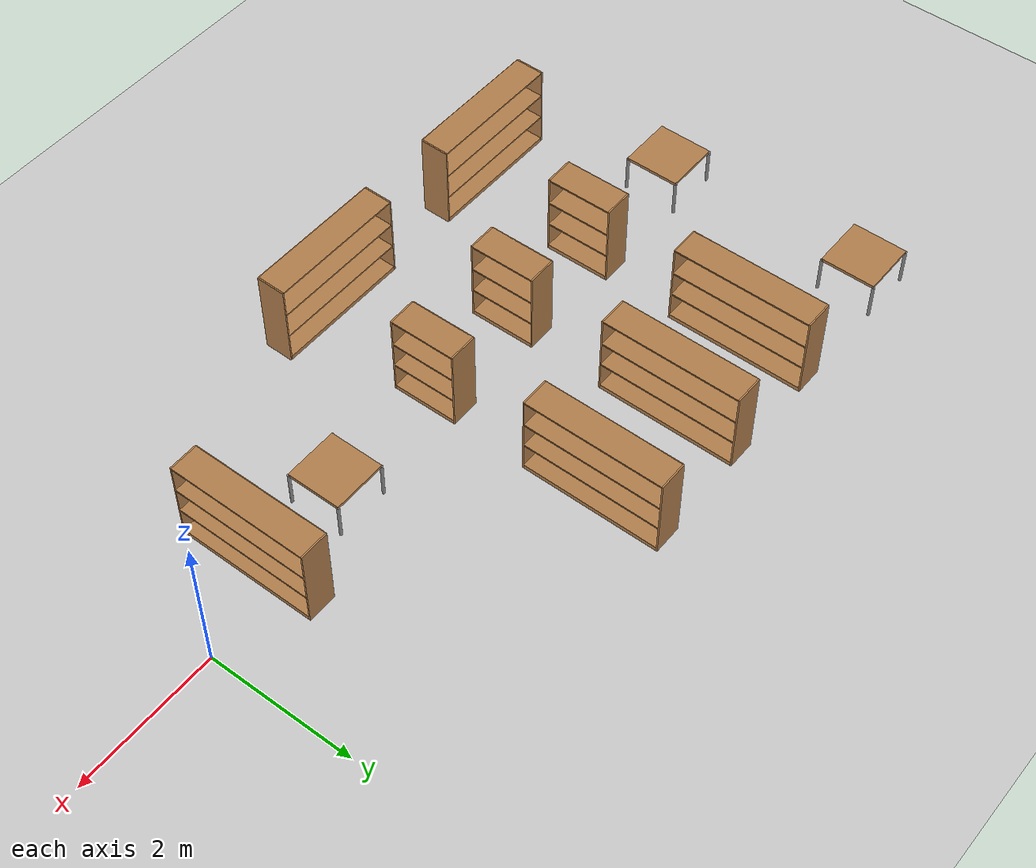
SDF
<sdf version="1.6">
 <world name="default">
  <model name="ground_plane">
   <static>1</static>
   <link name="link">
    <collision name="collision">
     <geometry><plane><normal>0 0 1</normal><size>100 100</size></plane></geometry>
     <surface><friction><ode><mu>100</mu><mu2>50</mu2></ode></friction></surface>
    </collision>
    <visual name="visual">
     <cast_shadows>0</cast_shadows>
     <geometry><plane><normal>0 0 1</normal><size>100 100</size></plane></geometry>
     <material>
      <script><uri>file://media/materials/scripts/gazebo.material</uri><name>Gazebo/Grey</name></script>
     </material>
    </visual>
   </link>
  </model>
  <model name="bookshelf_1">
   <static>1</static>
   <link name="link">
    <inertial><mass>1</mass></inertial>
    <collision name="back">
     <pose>0 0.005 0.6 0 -0 0</pose>
     <geometry><box><size>0.9 0.01 1.2</size></box></geometry>
    </collision>
    <visual name="visual1">
     <pose>0 0.005 0.6 0 -0 0</pose>
     <geometry><box><size>0.9 0.01 1.2</size></box></geometry>
     <material>
      <script><uri>file://media/materials/scripts/gazebo.material</uri><name>Gazebo/Wood</name></script>
     </material>
    </visual>
    <collision name="left_side">
     <pose>0.45 -0.195 0.6 0 -0 0</pose>
     <geometry><box><size>0.02 0.4 1.2</size></box></geometry>
    </collision>
    <visual name="visual2">
     <pose>0.45 -0.195 0.6 0 -0 0</pose>
     <geometry><box><size>0.02 0.4 1.2</size></box></geometry>
     <material>
      <script><uri>file://media/materials/scripts/gazebo.material</uri><name>Gazebo/Wood</name></script>
     </material>
    </visual>
    <collision name="right_side">
     <pose>-0.45 -0.195 0.6 0 -0 0</pose>
     <geometry><box><size>0.02 0.4 1.2</size></box></geometry>
    </collision>
    <visual name="visual3">
     <pose>-0.45 -0.195 0.6 0 -0 0</pose>
     <geometry><box><size>0.02 0.4 1.2</size></box></geometry>
     <material>
      <script><uri>file://media/materials/scripts/gazebo.material</uri><name>Gazebo/Wood</name></script>
     </material>
    </visual>
    <collision name="bottom">
     <pose>0 -0.195 0.03 0 -0 0</pose>
     <geometry><box><size>0.88 0.4 0.06</size></box></geometry>
    </collision>
    <visual name="visual4">
     <pose>0 -0.195 0.03 0 -0 0</pose>
     <geometry><box><size>0.88 0.4 0.06</size></box></geometry>
     <material>
      <script><uri>file://media/materials/scripts/gazebo.material</uri><name>Gazebo/Wood</name></script>
     </material>
    </visual>
    <collision name="top">
     <pose>0 -0.195 1.19 0 -0 0</pose>
     <geometry><box><size>0.88 0.4 0.02</size></box></geometry>
    </collision>
    <visual name="visual5">
     <pose>0 -0.195 1.19 0 -0 0</pose>
     <geometry><box><size>0.88 0.4 0.02</size></box></geometry>
     <material>
      <script><uri>file://media/materials/scripts/gazebo.material</uri><name>Gazebo/Wood</name></script>
     </material>
    </visual>
    <collision name="low_shelf">
     <pose>0 -0.195 0.43 0 -0 0</pose>
     <geometry><box><size>0.88 0.4 0.02</size></box></geometry>
    </collision>
    <visual name="visual6">
     <pose>0 -0.195 0.43 0 -0 0</pose>
     <geometry><box><size>0.88 0.4 0.02</size></box></geometry>
     <material>
      <script><uri>file://media/materials/scripts/gazebo.material</uri><name>Gazebo/Wood</name></script>
     </material>
    </visual>
    <collision name="high_shelf">
     <pose>0 -0.195 0.8 0 -0 0</pose>
     <geometry><box><size>0.88 0.4 0.02</size></box></geometry>
    </collision>
    <visual name="visual7">
     <pose>0 -0.195 0.8 0 -0 0</pose>
     <geometry><box><size>0.88 0.4 0.02</size></box></geometry>
     <material>
      <script><uri>file://media/materials/scripts/gazebo.material</uri><name>Gazebo/Wood</name></script>
     </material>
    </visual>
   </link>
   <pose>-7.42871 -0.404892 0 0 -0 1.57898</pose>
  </model>
  <model name="bookshelf_2">
   <static>1</static>
   <link name="link">
    <inertial><mass>1</mass></inertial>
    <collision name="back">
     <pose>0 0.005 0.6 0 -0 0</pose>
     <geometry><box><size>0.9 0.01 1.2</size></box></geometry>
    </collision>
    <visual name="visual1">
     <pose>0 0.005 0.6 0 -0 0</pose>
     <geometry><box><size>0.9 0.01 1.2</size></box></geometry>
     <material>
      <script><uri>file://media/materials/scripts/gazebo.material</uri><name>Gazebo/Wood</name></script>
     </material>
    </visual>
    <collision name="left_side">
     <pose>0.45 -0.195 0.6 0 -0 0</pose>
     <geometry><box><size>0.02 0.4 1.2</size></box></geometry>
    </collision>
    <visual name="visual2">
     <pose>0.45 -0.195 0.6 0 -0 0</pose>
     <geometry><box><size>0.02 0.4 1.2</size></box></geometry>
     <material>
      <script><uri>file://media/materials/scripts/gazebo.material</uri><name>Gazebo/Wood</name></script>
     </material>
    </visual>
    <collision name="right_side">
     <pose>-0.45 -0.195 0.6 0 -0 0</pose>
     <geometry><box><size>0.02 0.4 1.2</size></box></geometry>
    </collision>
    <visual name="visual3">
     <pose>-0.45 -0.195 0.6 0 -0 0</pose>
     <geometry><box><size>0.02 0.4 1.2</size></box></geometry>
     <material>
      <script><uri>file://media/materials/scripts/gazebo.material</uri><name>Gazebo/Wood</name></script>
     </material>
    </visual>
    <collision name="bottom">
     <pose>0 -0.195 0.03 0 -0 0</pose>
     <geometry><box><size>0.88 0.4 0.06</size></box></geometry>
    </collision>
    <visual name="visual4">
     <pose>0 -0.195 0.03 0 -0 0</pose>
     <geometry><box><size>0.88 0.4 0.06</size></box></geometry>
     <material>
      <script><uri>file://media/materials/scripts/gazebo.material</uri><name>Gazebo/Wood</name></script>
     </material>
    </visual>
    <collision name="top">
     <pose>0 -0.195 1.19 0 -0 0</pose>
     <geometry><box><size>0.88 0.4 0.02</size></box></geometry>
    </collision>
    <visual name="visual5">
     <pose>0 -0.195 1.19 0 -0 0</pose>
     <geometry><box><size>0.88 0.4 0.02</size></box></geometry>
     <material>
      <script><uri>file://media/materials/scripts/gazebo.material</uri><name>Gazebo/Wood</name></script>
     </material>
    </visual>
    <collision name="low_shelf">
     <pose>0 -0.195 0.43 0 -0 0</pose>
     <geometry><box><size>0.88 0.4 0.02</size></box></geometry>
    </collision>
    <visual name="visual6">
     <pose>0 -0.195 0.43 0 -0 0</pose>
     <geometry><box><size>0.88 0.4 0.02</size></box></geometry>
     <material>
      <script><uri>file://media/materials/scripts/gazebo.material</uri><name>Gazebo/Wood</name></script>
     </material>
    </visual>
    <collision name="high_shelf">
     <pose>0 -0.195 0.8 0 -0 0</pose>
     <geometry><box><size>0.88 0.4 0.02</size></box></geometry>
    </collision>
    <visual name="visual7">
     <pose>0 -0.195 0.8 0 -0 0</pose>
     <geometry><box><size>0.88 0.4 0.02</size></box></geometry>
     <material>
      <script><uri>file://media/materials/scripts/gazebo.material</uri><name>Gazebo/Wood</name></script>
     </material>
    </visual>
   </link>
   <pose>-5.98331 -0.451994 0 0 -0 1.57898</pose>
  </model>
  <model name="bookshelf_3">
   <static>1</static>
   <link name="link">
    <inertial><mass>1</mass></inertial>
    <collision name="back">
     <pose>0 0.005 0.6 0 -0 0</pose>
     <geometry><box><size>0.9 0.01 1.2</size></box></geometry>
    </collision>
    <visual name="visual1">
     <pose>0 0.005 0.6 0 -0 0</pose>
     <geometry><box><size>0.9 0.01 1.2</size></box></geometry>
     <material>
      <script><uri>file://media/materials/scripts/gazebo.material</uri><name>Gazebo/Wood</name></script>
     </material>
    </visual>
    <collision name="left_side">
     <pose>0.45 -0.195 0.6 0 -0 0</pose>
     <geometry><box><size>0.02 0.4 1.2</size></box></geometry>
    </collision>
    <visual name="visual2">
     <pose>0.45 -0.195 0.6 0 -0 0</pose>
     <geometry><box><size>0.02 0.4 1.2</size></box></geometry>
     <material>
      <script><uri>file://media/materials/scripts/gazebo.material</uri><name>Gazebo/Wood</name></script>
     </material>
    </visual>
    <collision name="right_side">
     <pose>-0.45 -0.195 0.6 0 -0 0</pose>
     <geometry><box><size>0.02 0.4 1.2</size></box></geometry>
    </collision>
    <visual name="visual3">
     <pose>-0.45 -0.195 0.6 0 -0 0</pose>
     <geometry><box><size>0.02 0.4 1.2</size></box></geometry>
     <material>
      <script><uri>file://media/materials/scripts/gazebo.material</uri><name>Gazebo/Wood</name></script>
     </material>
    </visual>
    <collision name="bottom">
     <pose>0 -0.195 0.03 0 -0 0</pose>
     <geometry><box><size>0.88 0.4 0.06</size></box></geometry>
    </collision>
    <visual name="visual4">
     <pose>0 -0.195 0.03 0 -0 0</pose>
     <geometry><box><size>0.88 0.4 0.06</size></box></geometry>
     <material>
      <script><uri>file://media/materials/scripts/gazebo.material</uri><name>Gazebo/Wood</name></script>
     </material>
    </visual>
    <collision name="top">
     <pose>0 -0.195 1.19 0 -0 0</pose>
     <geometry><box><size>0.88 0.4 0.02</size></box></geometry>
    </collision>
    <visual name="visual5">
     <pose>0 -0.195 1.19 0 -0 0</pose>
     <geometry><box><size>0.88 0.4 0.02</size></box></geometry>
     <material>
      <script><uri>file://media/materials/scripts/gazebo.material</uri><name>Gazebo/Wood</name></script>
     </material>
    </visual>
    <collision name="low_shelf">
     <pose>0 -0.195 0.43 0 -0 0</pose>
     <geometry><box><size>0.88 0.4 0.02</size></box></geometry>
    </collision>
    <visual name="visual6">
     <pose>0 -0.195 0.43 0 -0 0</pose>
     <geometry><box><size>0.88 0.4 0.02</size></box></geometry>
     <material>
      <script><uri>file://media/materials/scripts/gazebo.material</uri><name>Gazebo/Wood</name></script>
     </material>
    </visual>
    <collision name="high_shelf">
     <pose>0 -0.195 0.8 0 -0 0</pose>
     <geometry><box><size>0.88 0.4 0.02</size></box></geometry>
    </collision>
    <visual name="visual7">
     <pose>0 -0.195 0.8 0 -0 0</pose>
     <geometry><box><size>0.88 0.4 0.02</size></box></geometry>
     <material>
      <script><uri>file://media/materials/scripts/gazebo.material</uri><name>Gazebo/Wood</name></script>
     </material>
    </visual>
   </link>
   <pose>-4.4879 -0.432889 0 0 -0 1.57898</pose>
  </model>
  <model name="bookshelf_4">
   <static>1</static>
   <link name="link">
    <inertial><mass>1</mass></inertial>
    <collision name="back">
     <pose>0 0.005 0.6 0 -0 0</pose>
     <geometry><box><size>1.9 0.01 1.2</size></box></geometry>
    </collision>
    <visual name="back">
     <pose>0 0.005 0.6 0 -0 0</pose>
     <geometry><box><size>1.9 0.01 1.2</size></box></geometry>
     <material>
      <script><uri>file://media/materials/scripts/gazebo.material</uri><name>Gazebo/Wood</name></script>
     </material>
    </visual>
    <collision name="left_side">
     <pose>0.95 -0.195 0.6 0 -0 0</pose>
     <geometry><box><size>0.02 0.4 1.2</size></box></geometry>
    </collision>
    <visual name="left_side">
     <pose>0.95 -0.195 0.6 0 -0 0</pose>
     <geometry><box><size>0.02 0.4 1.2</size></box></geometry>
     <material>
      <script><uri>file://media/materials/scripts/gazebo.material</uri><name>Gazebo/Wood</name></script>
     </material>
    </visual>
    <collision name="right_side">
     <pose>-0.95 -0.195 0.6 0 -0 0</pose>
     <geometry><box><size>0.02 0.4 1.2</size></box></geometry>
    </collision>
    <visual name="right_side">
     <pose>-0.95 -0.195 0.6 0 -0 0</pose>
     <geometry><box><size>0.02 0.4 1.2</size></box></geometry>
     <material>
      <script><uri>file://media/materials/scripts/gazebo.material</uri><name>Gazebo/Wood</name></script>
     </material>
    </visual>
    <collision name="bottom">
     <pose>0 -0.195 0.03 0 -0 0</pose>
     <geometry><box><size>1.88 0.4 0.06</size></box></geometry>
    </collision>
    <visual name="bottom">
     <pose>0 -0.195 0.03 0 -0 0</pose>
     <geometry><box><size>1.88 0.4 0.06</size></box></geometry>
     <material>
      <script><uri>file://media/materials/scripts/gazebo.material</uri><name>Gazebo/Wood</name></script>
     </material>
    </visual>
    <collision name="top">
     <pose>0 -0.195 1.19 0 -0 0</pose>
     <geometry><box><size>1.88 0.4 0.02</size></box></geometry>
    </collision>
    <visual name="top">
     <pose>0 -0.195 1.19 0 -0 0</pose>
     <geometry><box><size>1.88 0.4 0.02</size></box></geometry>
     <material>
      <script><uri>file://media/materials/scripts/gazebo.material</uri><name>Gazebo/Wood</name></script>
     </material>
    </visual>
    <collision name="low_shelf">
     <pose>0 -0.195 0.43 0 -0 0</pose>
     <geometry><box><size>1.88 0.4 0.02</size></box></geometry>
    </collision>
    <visual name="low_shelf">
     <pose>0 -0.195 0.43 0 -0 0</pose>
     <geometry><box><size>1.88 0.4 0.02</size></box></geometry>
     <material>
      <script><uri>file://media/materials/scripts/gazebo.material</uri><name>Gazebo/Wood</name></script>
     </material>
    </visual>
    <collision name="high_shelf">
     <pose>0 -0.195 0.8 0 -0 0</pose>
     <geometry><box><size>1.88 0.4 0.02</size></box></geometry>
    </collision>
    <visual name="high_shelf">
     <pose>0 -0.195 0.8 0 -0 0</pose>
     <geometry><box><size>1.88 0.4 0.02</size></box></geometry>
     <material>
      <script><uri>file://media/materials/scripts/gazebo.material</uri><name>Gazebo/Wood</name></script>
     </material>
    </visual>
   </link>
   <pose>-7.56051 -2.50929 0 0 -0 3.13337</pose>
  </model>
  <model name="table_1">
   <static>1</static>
   <link name="link">
    <collision name="surface">
     <pose>0 0 0.5 0 -0 0</pose>
     <geometry><box><size>0.75 0.75 0.04</size></box></geometry>
    </collision>
    <visual name="visual1">
     <pose>0 0 0.5 0 -0 0</pose>
     <geometry><box><size>0.75 0.75 0.04</size></box></geometry>
     <material>
      <script><uri>file://media/materials/scripts/gazebo.material</uri><name>Gazebo/Wood</name></script>
     </material>
    </visual>
    <collision name="front_left_leg">
     <pose>0.37 0.37 0.25 0 -0 0</pose>
     <geometry><cylinder><radius>0.02</radius><length>0.5</length></cylinder></geometry>
    </collision>
    <visual name="front_left_leg">
     <pose>0.37 0.37 0.25 0 -0 0</pose>
     <geometry><cylinder><radius>0.02</radius><length>0.5</length></cylinder></geometry>
     <material>
      <script><uri>file://media/materials/scripts/gazebo.material</uri><name>Gazebo/Grey</name></script>
     </material>
    </visual>
    <collision name="front_right_leg">
     <pose>0.37 -0.37 0.25 0 -0 0</pose>
     <geometry><cylinder><radius>0.02</radius><length>0.5</length></cylinder></geometry>
    </collision>
    <visual name="front_right_leg">
     <pose>0.37 -0.37 0.25 0 -0 0</pose>
     <geometry><cylinder><radius>0.02</radius><length>0.5</length></cylinder></geometry>
     <material>
      <script><uri>file://media/materials/scripts/gazebo.material</uri><name>Gazebo/Grey</name></script>
     </material>
    </visual>
    <collision name="back_right_leg">
     <pose>-0.37 -0.37 0.25 0 -0 0</pose>
     <geometry><cylinder><radius>0.02</radius><length>0.5</length></cylinder></geometry>
    </collision>
    <visual name="back_right_leg">
     <pose>-0.37 -0.37 0.25 0 -0 0</pose>
     <geometry><cylinder><radius>0.02</radius><length>0.5</length></cylinder></geometry>
     <material>
      <script><uri>file://media/materials/scripts/gazebo.material</uri><name>Gazebo/Grey</name></script>
     </material>
    </visual>
    <collision name="back_left_leg">
     <pose>-0.37 0.37 0.25 0 -0 0</pose>
     <geometry><cylinder><radius>0.02</radius><length>0.5</length></cylinder></geometry>
    </collision>
    <visual name="back_left_leg">
     <pose>-0.37 0.37 0.25 0 -0 0</pose>
     <geometry><cylinder><radius>0.02</radius><length>0.5</length></cylinder></geometry>
     <material>
      <script><uri>file://media/materials/scripts/gazebo.material</uri><name>Gazebo/Grey</name></script>
     </material>
    </visual>
    <velocity_decay><linear>0</linear><angular>0</angular></velocity_decay>
   </link>
   <pose>-2.45074 -0.350749 0 0 -0 0</pose>
  </model>
  <model name="table_4">
   <static>1</static>
   <link name="link">
    <collision name="surface">
     <pose>0 0 0.5 0 -0 0</pose>
     <geometry><box><size>0.75 0.75 0.04</size></box></geometry>
    </collision>
    <visual name="visual1">
     <pose>0 0 0.5 0 -0 0</pose>
     <geometry><box><size>0.75 0.75 0.04</size></box></geometry>
     <material>
      <script><uri>file://media/materials/scripts/gazebo.material</uri><name>Gazebo/Wood</name></script>
     </material>
    </visual>
    <collision name="front_left_leg">
     <pose>0.37 0.37 0.25 0 -0 0</pose>
     <geometry><cylinder><radius>0.02</radius><length>0.5</length></cylinder></geometry>
    </collision>
    <visual name="front_left_leg">
     <pose>0.37 0.37 0.25 0 -0 0</pose>
     <geometry><cylinder><radius>0.02</radius><length>0.5</length></cylinder></geometry>
     <material>
      <script><uri>file://media/materials/scripts/gazebo.material</uri><name>Gazebo/Grey</name></script>
     </material>
    </visual>
    <collision name="front_right_leg">
     <pose>0.37 -0.37 0.25 0 -0 0</pose>
     <geometry><cylinder><radius>0.02</radius><length>0.5</length></cylinder></geometry>
    </collision>
    <visual name="front_right_leg">
     <pose>0.37 -0.37 0.25 0 -0 0</pose>
     <geometry><cylinder><radius>0.02</radius><length>0.5</length></cylinder></geometry>
     <material>
      <script><uri>file://media/materials/scripts/gazebo.material</uri><name>Gazebo/Grey</name></script>
     </material>
    </visual>
    <collision name="back_right_leg">
     <pose>-0.37 -0.37 0.25 0 -0 0</pose>
     <geometry><cylinder><radius>0.02</radius><length>0.5</length></cylinder></geometry>
    </collision>
    <visual name="back_right_leg">
     <pose>-0.37 -0.37 0.25 0 -0 0</pose>
     <geometry><cylinder><radius>0.02</radius><length>0.5</length></cylinder></geometry>
     <material>
      <script><uri>file://media/materials/scripts/gazebo.material</uri><name>Gazebo/Grey</name></script>
     </material>
    </visual>
    <collision name="back_left_leg">
     <pose>-0.37 0.37 0.25 0 -0 0</pose>
     <geometry><cylinder><radius>0.02</radius><length>0.5</length></cylinder></geometry>
    </collision>
    <visual name="back_left_leg">
     <pose>-0.37 0.37 0.25 0 -0 0</pose>
     <geometry><cylinder><radius>0.02</radius><length>0.5</length></cylinder></geometry>
     <material>
      <script><uri>file://media/materials/scripts/gazebo.material</uri><name>Gazebo/Grey</name></script>
     </material>
    </visual>
    <velocity_decay><linear>0</linear><angular>0</angular></velocity_decay>
   </link>
   <pose>-8.88942 -0.341741 0 0 -0 0</pose>
  </model>
  <model name="table_5">
   <static>1</static>
   <link name="link">
    <collision name="surface">
     <pose>0 0 0.5 0 -0 0</pose>
     <geometry><box><size>0.75 0.75 0.04</size></box></geometry>
    </collision>
    <visual name="visual1">
     <pose>0 0 0.5 0 -0 0</pose>
     <geometry><box><size>0.75 0.75 0.04</size></box></geometry>
     <material>
      <script><uri>file://media/materials/scripts/gazebo.material</uri><name>Gazebo/Wood</name></script>
     </material>
    </visual>
    <collision name="front_left_leg">
     <pose>0.37 0.37 0.25 0 -0 0</pose>
     <geometry><cylinder><radius>0.02</radius><length>0.5</length></cylinder></geometry>
    </collision>
    <visual name="front_left_leg">
     <pose>0.37 0.37 0.25 0 -0 0</pose>
     <geometry><cylinder><radius>0.02</radius><length>0.5</length></cylinder></geometry>
     <material>
      <script><uri>file://media/materials/scripts/gazebo.material</uri><name>Gazebo/Grey</name></script>
     </material>
    </visual>
    <collision name="front_right_leg">
     <pose>0.37 -0.37 0.25 0 -0 0</pose>
     <geometry><cylinder><radius>0.02</radius><length>0.5</length></cylinder></geometry>
    </collision>
    <visual name="front_right_leg">
     <pose>0.37 -0.37 0.25 0 -0 0</pose>
     <geometry><cylinder><radius>0.02</radius><length>0.5</length></cylinder></geometry>
     <material>
      <script><uri>file://media/materials/scripts/gazebo.material</uri><name>Gazebo/Grey</name></script>
     </material>
    </visual>
    <collision name="back_right_leg">
     <pose>-0.37 -0.37 0.25 0 -0 0</pose>
     <geometry><cylinder><radius>0.02</radius><length>0.5</length></cylinder></geometry>
    </collision>
    <visual name="back_right_leg">
     <pose>-0.37 -0.37 0.25 0 -0 0</pose>
     <geometry><cylinder><radius>0.02</radius><length>0.5</length></cylinder></geometry>
     <material>
      <script><uri>file://media/materials/scripts/gazebo.material</uri><name>Gazebo/Grey</name></script>
     </material>
    </visual>
    <collision name="back_left_leg">
     <pose>-0.37 0.37 0.25 0 -0 0</pose>
     <geometry><cylinder><radius>0.02</radius><length>0.5</length></cylinder></geometry>
    </collision>
    <visual name="back_left_leg">
     <pose>-0.37 0.37 0.25 0 -0 0</pose>
     <geometry><cylinder><radius>0.02</radius><length>0.5</length></cylinder></geometry>
     <material>
      <script><uri>file://media/materials/scripts/gazebo.material</uri><name>Gazebo/Grey</name></script>
     </material>
    </visual>
    <velocity_decay><linear>0</linear><angular>0</angular></velocity_decay>
   </link>
   <pose>-8.9429 2.56322 0 0 -0 0</pose>
  </model>
  <model name="bookshelf_6">
   <static>1</static>
   <link name="link">
    <inertial><mass>1</mass></inertial>
    <collision name="back">
     <pose>0 0.005 0.6 0 -0 0</pose>
     <geometry><box><size>1.9 0.01 1.2</size></box></geometry>
    </collision>
    <visual name="back">
     <pose>0 0.005 0.6 0 -0 0</pose>
     <geometry><box><size>1.9 0.01 1.2</size></box></geometry>
     <material>
      <script><uri>file://media/materials/scripts/gazebo.material</uri><name>Gazebo/Wood</name></script>
     </material>
    </visual>
    <collision name="left_side">
     <pose>0.95 -0.195 0.6 0 -0 0</pose>
     <geometry><box><size>0.02 0.4 1.2</size></box></geometry>
    </collision>
    <visual name="left_side">
     <pose>0.95 -0.195 0.6 0 -0 0</pose>
     <geometry><box><size>0.02 0.4 1.2</size></box></geometry>
     <material>
      <script><uri>file://media/materials/scripts/gazebo.material</uri><name>Gazebo/Wood</name></script>
     </material>
    </visual>
    <collision name="right_side">
     <pose>-0.95 -0.195 0.6 0 -0 0</pose>
     <geometry><box><size>0.02 0.4 1.2</size></box></geometry>
    </collision>
    <visual name="right_side">
     <pose>-0.95 -0.195 0.6 0 -0 0</pose>
     <geometry><box><size>0.02 0.4 1.2</size></box></geometry>
     <material>
      <script><uri>file://media/materials/scripts/gazebo.material</uri><name>Gazebo/Wood</name></script>
     </material>
    </visual>
    <collision name="bottom">
     <pose>0 -0.195 0.03 0 -0 0</pose>
     <geometry><box><size>1.88 0.4 0.06</size></box></geometry>
    </collision>
    <visual name="bottom">
     <pose>0 -0.195 0.03 0 -0 0</pose>
     <geometry><box><size>1.88 0.4 0.06</size></box></geometry>
     <material>
      <script><uri>file://media/materials/scripts/gazebo.material</uri><name>Gazebo/Wood</name></script>
     </material>
    </visual>
    <collision name="top">
     <pose>0 -0.195 1.19 0 -0 0</pose>
     <geometry><box><size>1.88 0.4 0.02</size></box></geometry>
    </collision>
    <visual name="top">
     <pose>0 -0.195 1.19 0 -0 0</pose>
     <geometry><box><size>1.88 0.4 0.02</size></box></geometry>
     <material>
      <script><uri>file://media/materials/scripts/gazebo.material</uri><name>Gazebo/Wood</name></script>
     </material>
    </visual>
    <collision name="low_shelf">
     <pose>0 -0.195 0.43 0 -0 0</pose>
     <geometry><box><size>1.88 0.4 0.02</size></box></geometry>
    </collision>
    <visual name="low_shelf">
     <pose>0 -0.195 0.43 0 -0 0</pose>
     <geometry><box><size>1.88 0.4 0.02</size></box></geometry>
     <material>
      <script><uri>file://media/materials/scripts/gazebo.material</uri><name>Gazebo/Wood</name></script>
     </material>
    </visual>
    <collision name="high_shelf">
     <pose>0 -0.195 0.8 0 -0 0</pose>
     <geometry><box><size>1.88 0.4 0.02</size></box></geometry>
    </collision>
    <visual name="high_shelf">
     <pose>0 -0.195 0.8 0 -0 0</pose>
     <geometry><box><size>1.88 0.4 0.02</size></box></geometry>
     <material>
      <script><uri>file://media/materials/scripts/gazebo.material</uri><name>Gazebo/Wood</name></script>
     </material>
    </visual>
   </link>
   <pose>-4.48812 2.00352 0 0 0.002317 1.57295</pose>
  </model>
  <model name="bookshelf_10">
   <static>1</static>
   <link name="link">
    <inertial><mass>1</mass></inertial>
    <collision name="back">
     <pose>0 0.005 0.6 0 -0 0</pose>
     <geometry><box><size>1.9 0.01 1.2</size></box></geometry>
    </collision>
    <visual name="back">
     <pose>0 0.005 0.6 0 -0 0</pose>
     <geometry><box><size>1.9 0.01 1.2</size></box></geometry>
     <material>
      <script><uri>file://media/materials/scripts/gazebo.material</uri><name>Gazebo/Wood</name></script>
     </material>
    </visual>
    <collision name="left_side">
     <pose>0.95 -0.195 0.6 0 -0 0</pose>
     <geometry><box><size>0.02 0.4 1.2</size></box></geometry>
    </collision>
    <visual name="left_side">
     <pose>0.95 -0.195 0.6 0 -0 0</pose>
     <geometry><box><size>0.02 0.4 1.2</size></box></geometry>
     <material>
      <script><uri>file://media/materials/scripts/gazebo.material</uri><name>Gazebo/Wood</name></script>
     </material>
    </visual>
    <collision name="right_side">
     <pose>-0.95 -0.195 0.6 0 -0 0</pose>
     <geometry><box><size>0.02 0.4 1.2</size></box></geometry>
    </collision>
    <visual name="right_side">
     <pose>-0.95 -0.195 0.6 0 -0 0</pose>
     <geometry><box><size>0.02 0.4 1.2</size></box></geometry>
     <material>
      <script><uri>file://media/materials/scripts/gazebo.material</uri><name>Gazebo/Wood</name></script>
     </material>
    </visual>
    <collision name="bottom">
     <pose>0 -0.195 0.03 0 -0 0</pose>
     <geometry><box><size>1.88 0.4 0.06</size></box></geometry>
    </collision>
    <visual name="bottom">
     <pose>0 -0.195 0.03 0 -0 0</pose>
     <geometry><box><size>1.88 0.4 0.06</size></box></geometry>
     <material>
      <script><uri>file://media/materials/scripts/gazebo.material</uri><name>Gazebo/Wood</name></script>
     </material>
    </visual>
    <collision name="top">
     <pose>0 -0.195 1.19 0 -0 0</pose>
     <geometry><box><size>1.88 0.4 0.02</size></box></geometry>
    </collision>
    <visual name="top">
     <pose>0 -0.195 1.19 0 -0 0</pose>
     <geometry><box><size>1.88 0.4 0.02</size></box></geometry>
     <material>
      <script><uri>file://media/materials/scripts/gazebo.material</uri><name>Gazebo/Wood</name></script>
     </material>
    </visual>
    <collision name="low_shelf">
     <pose>0 -0.195 0.43 0 -0 0</pose>
     <geometry><box><size>1.88 0.4 0.02</size></box></geometry>
    </collision>
    <visual name="low_shelf">
     <pose>0 -0.195 0.43 0 -0 0</pose>
     <geometry><box><size>1.88 0.4 0.02</size></box></geometry>
     <material>
      <script><uri>file://media/materials/scripts/gazebo.material</uri><name>Gazebo/Wood</name></script>
     </material>
    </visual>
    <collision name="high_shelf">
     <pose>0 -0.195 0.8 0 -0 0</pose>
     <geometry><box><size>1.88 0.4 0.02</size></box></geometry>
    </collision>
    <visual name="high_shelf">
     <pose>0 -0.195 0.8 0 -0 0</pose>
     <geometry><box><size>1.88 0.4 0.02</size></box></geometry>
     <material>
      <script><uri>file://media/materials/scripts/gazebo.material</uri><name>Gazebo/Wood</name></script>
     </material>
    </visual>
   </link>
   <pose>-5.99337 1.97448 0 0 0.002317 1.57295</pose>
  </model>
  <model name="bookshelf_12">
   <static>1</static>
   <link name="link">
    <inertial><mass>1</mass></inertial>
    <collision name="back">
     <pose>0 0.005 0.6 0 -0 0</pose>
     <geometry><box><size>1.9 0.01 1.2</size></box></geometry>
    </collision>
    <visual name="back">
     <pose>0 0.005 0.6 0 -0 0</pose>
     <geometry><box><size>1.9 0.01 1.2</size></box></geometry>
     <material>
      <script><uri>file://media/materials/scripts/gazebo.material</uri><name>Gazebo/Wood</name></script>
     </material>
    </visual>
    <collision name="left_side">
     <pose>0.95 -0.195 0.6 0 -0 0</pose>
     <geometry><box><size>0.02 0.4 1.2</size></box></geometry>
    </collision>
    <visual name="left_side">
     <pose>0.95 -0.195 0.6 0 -0 0</pose>
     <geometry><box><size>0.02 0.4 1.2</size></box></geometry>
     <material>
      <script><uri>file://media/materials/scripts/gazebo.material</uri><name>Gazebo/Wood</name></script>
     </material>
    </visual>
    <collision name="right_side">
     <pose>-0.95 -0.195 0.6 0 -0 0</pose>
     <geometry><box><size>0.02 0.4 1.2</size></box></geometry>
    </collision>
    <visual name="right_side">
     <pose>-0.95 -0.195 0.6 0 -0 0</pose>
     <geometry><box><size>0.02 0.4 1.2</size></box></geometry>
     <material>
      <script><uri>file://media/materials/scripts/gazebo.material</uri><name>Gazebo/Wood</name></script>
     </material>
    </visual>
    <collision name="bottom">
     <pose>0 -0.195 0.03 0 -0 0</pose>
     <geometry><box><size>1.88 0.4 0.06</size></box></geometry>
    </collision>
    <visual name="bottom">
     <pose>0 -0.195 0.03 0 -0 0</pose>
     <geometry><box><size>1.88 0.4 0.06</size></box></geometry>
     <material>
      <script><uri>file://media/materials/scripts/gazebo.material</uri><name>Gazebo/Wood</name></script>
     </material>
    </visual>
    <collision name="top">
     <pose>0 -0.195 1.19 0 -0 0</pose>
     <geometry><box><size>1.88 0.4 0.02</size></box></geometry>
    </collision>
    <visual name="top">
     <pose>0 -0.195 1.19 0 -0 0</pose>
     <geometry><box><size>1.88 0.4 0.02</size></box></geometry>
     <material>
      <script><uri>file://media/materials/scripts/gazebo.material</uri><name>Gazebo/Wood</name></script>
     </material>
    </visual>
    <collision name="low_shelf">
     <pose>0 -0.195 0.43 0 -0 0</pose>
     <geometry><box><size>1.88 0.4 0.02</size></box></geometry>
    </collision>
    <visual name="low_shelf">
     <pose>0 -0.195 0.43 0 -0 0</pose>
     <geometry><box><size>1.88 0.4 0.02</size></box></geometry>
     <material>
      <script><uri>file://media/materials/scripts/gazebo.material</uri><name>Gazebo/Wood</name></script>
     </material>
    </visual>
    <collision name="high_shelf">
     <pose>0 -0.195 0.8 0 -0 0</pose>
     <geometry><box><size>1.88 0.4 0.02</size></box></geometry>
    </collision>
    <visual name="high_shelf">
     <pose>0 -0.195 0.8 0 -0 0</pose>
     <geometry><box><size>1.88 0.4 0.02</size></box></geometry>
     <material>
      <script><uri>file://media/materials/scripts/gazebo.material</uri><name>Gazebo/Wood</name></script>
     </material>
    </visual>
   </link>
   <pose>-7.41555 1.98111 0 0 0.002317 1.57295</pose>
  </model>
  <model name="bookshelf_14">
   <static>1</static>
   <link name="link">
    <inertial><mass>1</mass></inertial>
    <collision name="back">
     <pose>0 0.005 0.6 0 -0 0</pose>
     <geometry><box><size>1.9 0.01 1.2</size></box></geometry>
    </collision>
    <visual name="back">
     <pose>0 0.005 0.6 0 -0 0</pose>
     <geometry><box><size>1.9 0.01 1.2</size></box></geometry>
     <material>
      <script><uri>file://media/materials/scripts/gazebo.material</uri><name>Gazebo/Wood</name></script>
     </material>
    </visual>
    <collision name="left_side">
     <pose>0.95 -0.195 0.6 0 -0 0</pose>
     <geometry><box><size>0.02 0.4 1.2</size></box></geometry>
    </collision>
    <visual name="left_side">
     <pose>0.95 -0.195 0.6 0 -0 0</pose>
     <geometry><box><size>0.02 0.4 1.2</size></box></geometry>
     <material>
      <script><uri>file://media/materials/scripts/gazebo.material</uri><name>Gazebo/Wood</name></script>
     </material>
    </visual>
    <collision name="right_side">
     <pose>-0.95 -0.195 0.6 0 -0 0</pose>
     <geometry><box><size>0.02 0.4 1.2</size></box></geometry>
    </collision>
    <visual name="right_side">
     <pose>-0.95 -0.195 0.6 0 -0 0</pose>
     <geometry><box><size>0.02 0.4 1.2</size></box></geometry>
     <material>
      <script><uri>file://media/materials/scripts/gazebo.material</uri><name>Gazebo/Wood</name></script>
     </material>
    </visual>
    <collision name="bottom">
     <pose>0 -0.195 0.03 0 -0 0</pose>
     <geometry><box><size>1.88 0.4 0.06</size></box></geometry>
    </collision>
    <visual name="bottom">
     <pose>0 -0.195 0.03 0 -0 0</pose>
     <geometry><box><size>1.88 0.4 0.06</size></box></geometry>
     <material>
      <script><uri>file://media/materials/scripts/gazebo.material</uri><name>Gazebo/Wood</name></script>
     </material>
    </visual>
    <collision name="top">
     <pose>0 -0.195 1.19 0 -0 0</pose>
     <geometry><box><size>1.88 0.4 0.02</size></box></geometry>
    </collision>
    <visual name="top">
     <pose>0 -0.195 1.19 0 -0 0</pose>
     <geometry><box><size>1.88 0.4 0.02</size></box></geometry>
     <material>
      <script><uri>file://media/materials/scripts/gazebo.material</uri><name>Gazebo/Wood</name></script>
     </material>
    </visual>
    <collision name="low_shelf">
     <pose>0 -0.195 0.43 0 -0 0</pose>
     <geometry><box><size>1.88 0.4 0.02</size></box></geometry>
    </collision>
    <visual name="low_shelf">
     <pose>0 -0.195 0.43 0 -0 0</pose>
     <geometry><box><size>1.88 0.4 0.02</size></box></geometry>
     <material>
      <script><uri>file://media/materials/scripts/gazebo.material</uri><name>Gazebo/Wood</name></script>
     </material>
    </visual>
    <collision name="high_shelf">
     <pose>0 -0.195 0.8 0 -0 0</pose>
     <geometry><box><size>1.88 0.4 0.02</size></box></geometry>
    </collision>
    <visual name="high_shelf">
     <pose>0 -0.195 0.8 0 -0 0</pose>
     <geometry><box><size>1.88 0.4 0.02</size></box></geometry>
     <material>
      <script><uri>file://media/materials/scripts/gazebo.material</uri><name>Gazebo/Wood</name></script>
     </material>
    </visual>
   </link>
   <pose>-1.40017 -0.440967 0 0 0.002317 1.57295</pose>
  </model>
  <model name="bookshelf_17">
   <static>1</static>
   <link name="link">
    <inertial><mass>1</mass></inertial>
    <collision name="back">
     <pose>0 0.005 0.6 0 -0 0</pose>
     <geometry><box><size>1.9 0.01 1.2</size></box></geometry>
    </collision>
    <visual name="back">
     <pose>0 0.005 0.6 0 -0 0</pose>
     <geometry><box><size>1.9 0.01 1.2</size></box></geometry>
     <material>
      <script><uri>file://media/materials/scripts/gazebo.material</uri><name>Gazebo/Wood</name></script>
     </material>
    </visual>
    <collision name="left_side">
     <pose>0.95 -0.195 0.6 0 -0 0</pose>
     <geometry><box><size>0.02 0.4 1.2</size></box></geometry>
    </collision>
    <visual name="left_side">
     <pose>0.95 -0.195 0.6 0 -0 0</pose>
     <geometry><box><size>0.02 0.4 1.2</size></box></geometry>
     <material>
      <script><uri>file://media/materials/scripts/gazebo.material</uri><name>Gazebo/Wood</name></script>
     </material>
    </visual>
    <collision name="right_side">
     <pose>-0.95 -0.195 0.6 0 -0 0</pose>
     <geometry><box><size>0.02 0.4 1.2</size></box></geometry>
    </collision>
    <visual name="right_side">
     <pose>-0.95 -0.195 0.6 0 -0 0</pose>
     <geometry><box><size>0.02 0.4 1.2</size></box></geometry>
     <material>
      <script><uri>file://media/materials/scripts/gazebo.material</uri><name>Gazebo/Wood</name></script>
     </material>
    </visual>
    <collision name="bottom">
     <pose>0 -0.195 0.03 0 -0 0</pose>
     <geometry><box><size>1.88 0.4 0.06</size></box></geometry>
    </collision>
    <visual name="bottom">
     <pose>0 -0.195 0.03 0 -0 0</pose>
     <geometry><box><size>1.88 0.4 0.06</size></box></geometry>
     <material>
      <script><uri>file://media/materials/scripts/gazebo.material</uri><name>Gazebo/Wood</name></script>
     </material>
    </visual>
    <collision name="top">
     <pose>0 -0.195 1.19 0 -0 0</pose>
     <geometry><box><size>1.88 0.4 0.02</size></box></geometry>
    </collision>
    <visual name="top">
     <pose>0 -0.195 1.19 0 -0 0</pose>
     <geometry><box><size>1.88 0.4 0.02</size></box></geometry>
     <material>
      <script><uri>file://media/materials/scripts/gazebo.material</uri><name>Gazebo/Wood</name></script>
     </material>
    </visual>
    <collision name="low_shelf">
     <pose>0 -0.195 0.43 0 -0 0</pose>
     <geometry><box><size>1.88 0.4 0.02</size></box></geometry>
    </collision>
    <visual name="low_shelf">
     <pose>0 -0.195 0.43 0 -0 0</pose>
     <geometry><box><size>1.88 0.4 0.02</size></box></geometry>
     <material>
      <script><uri>file://media/materials/scripts/gazebo.material</uri><name>Gazebo/Wood</name></script>
     </material>
    </visual>
    <collision name="high_shelf">
     <pose>0 -0.195 0.8 0 -0 0</pose>
     <geometry><box><size>1.88 0.4 0.02</size></box></geometry>
    </collision>
    <visual name="high_shelf">
     <pose>0 -0.195 0.8 0 -0 0</pose>
     <geometry><box><size>1.88 0.4 0.02</size></box></geometry>
     <material>
      <script><uri>file://media/materials/scripts/gazebo.material</uri><name>Gazebo/Wood</name></script>
     </material>
    </visual>
   </link>
   <pose>-4.59975 -2.53387 0 0 -0 3.13337</pose>
  </model>
 </world>
</sdf>
